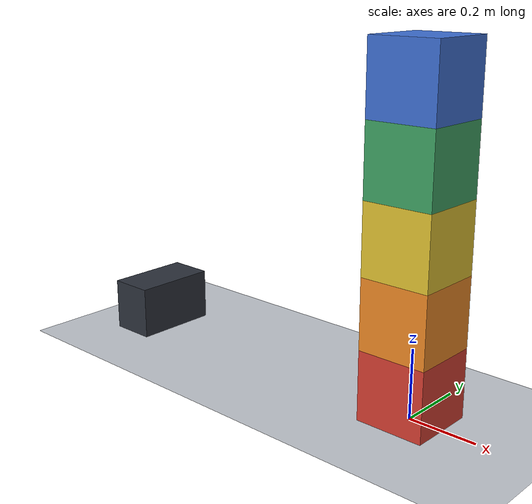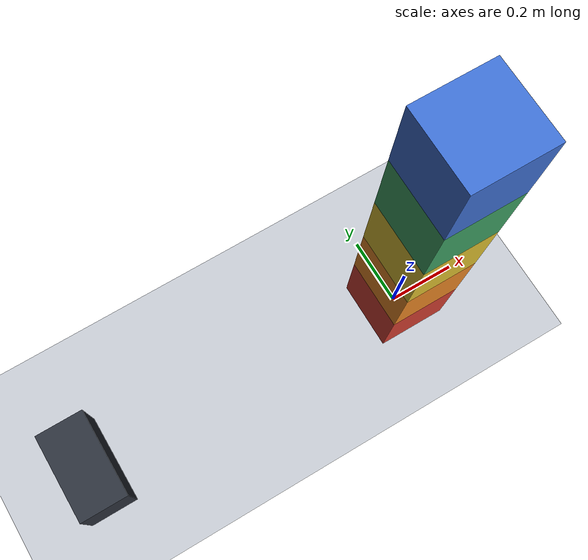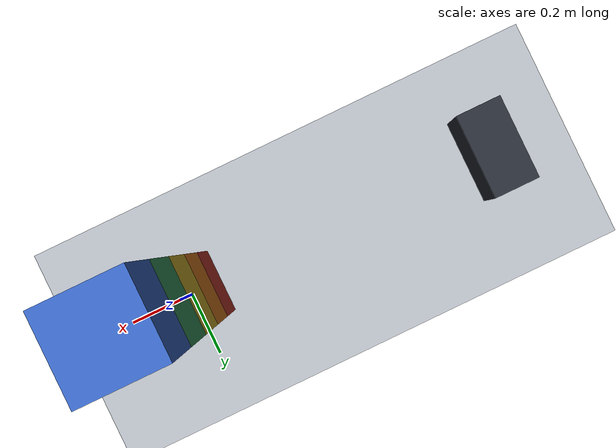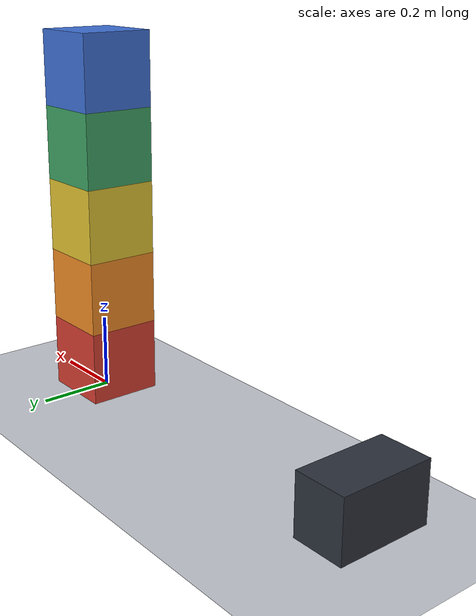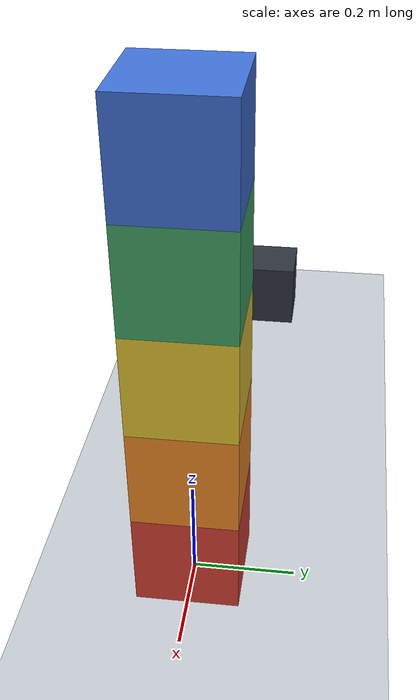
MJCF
<mujoco model="five_block_topple">
  <compiler angle="radian" autolimits="true"/>
  <option timestep="0.002" gravity="0 0 -9.81" integrator="implicitfast" solver="Newton" iterations="100" tolerance="1e-10"/>
  <statistic center="0.2 0 0.45" extent="2.2"/>

  <visual>
    <headlight ambient="0.35 0.35 0.35" diffuse="0.65 0.65 0.65" specular="0.15 0.15 0.15"/>
    <rgba haze="0.85 0.90 0.95 1"/>
  </visual>

  <worldbody>
    <light name="overhead" pos="0 -2 4" dir="0 0 -1" diffuse="0.8 0.8 0.8"/>
    <geom name="floor" type="plane" pos="0 0 0" size="4 4 0.1" friction="0.75 0.005 0.001" solref="0.005 1" solimp="0.95 0.99 0.001" rgba="0.78 0.80 0.83 1"/>

    <body name="pusher" pos="-1 0 0.09">
      <joint name="push_slide" type="slide" axis="1 0 0" limited="true" range="0 1.6" damping="0" solreflimit="0.008 1"/>
      <geom name="pusher_geom" type="box" size="0.07 0.13 0.08" mass="2" friction="0.25 0.005 0.001" solref="0.005 1" solimp="0.95 0.99 0.001" rgba="0.18 0.20 0.24 1"/>
    </body>

    <body name="block1" pos="0 0 0.1">
      <freejoint name="block1_free"/>
      <geom name="block1_geom" type="box" size="0.1 0.1 0.1" mass="0.5" friction="0.35 0.005 0.001" solref="0.005 1" solimp="0.95 0.99 0.001" rgba="0.85 0.25 0.20 1"/>
    </body>

    <body name="block2" pos="0 0 0.3">
      <freejoint name="block2_free"/>
      <geom name="block2_geom" type="box" size="0.1 0.1 0.1" mass="0.5" friction="0.35 0.005 0.001" solref="0.005 1" solimp="0.95 0.99 0.001" rgba="0.95 0.55 0.15 1"/>
    </body>

    <body name="block3" pos="0 0 0.5">
      <freejoint name="block3_free"/>
      <geom name="block3_geom" type="box" size="0.1 0.1 0.1" mass="0.5" friction="0.35 0.005 0.001" solref="0.005 1" solimp="0.95 0.99 0.001" rgba="0.90 0.78 0.20 1"/>
    </body>

    <body name="block4" pos="0 0 0.7">
      <freejoint name="block4_free"/>
      <geom name="block4_geom" type="box" size="0.1 0.1 0.1" mass="0.5" friction="0.35 0.005 0.001" solref="0.005 1" solimp="0.95 0.99 0.001" rgba="0.25 0.65 0.40 1"/>
    </body>

    <body name="block5" pos="0 0 0.9">
      <freejoint name="block5_free"/>
      <geom name="block5_geom" type="box" size="0.1 0.1 0.1" mass="0.5" friction="0.35 0.005 0.001" solref="0.005 1" solimp="0.95 0.99 0.001" rgba="0.25 0.45 0.85 1"/>
    </body>
  </worldbody>

  <actuator>
    <velocity name="push_motor" joint="push_slide" kv="120" ctrllimited="true" ctrlrange="0 1.25" forcelimited="true" forcerange="-100 100"/>
  </actuator>

  <keyframe>
    <key name="start" ctrl="1.25"/>
  </keyframe>
</mujoco>
